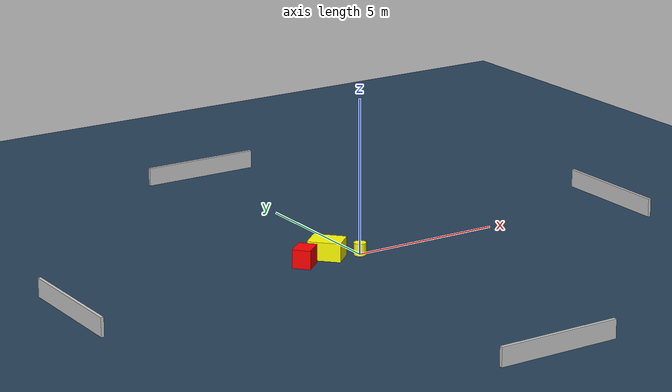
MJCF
<?xml version="1.0" ?>
<mujoco model="generated_environment">
  <option timestep="0.01" integrator="RK4" cone="elliptic"/>
  <default>
    <geom density="1"/>
  </default>
  <asset>
    <texture builtin="gradient" height="3072" name="skybox" rgb1="0.3 0.5 0.7" rgb2="0 0 0" type="skybox" width="512"/>
    <texture builtin="checker" height="300" name="groundplane" rgb1="0.2 0.3 0.4" rgb2="0.1 0.2 0.3" type="2d" width="300"/>
    <material name="groundplane" reflectance="0.2" texrepeat="5 5" texture="groundplane"/>
  </asset>
  <worldbody>
    <light dir="0 0 -1" directional="true" pos="0 0 1.5"/>
    <geom condim="3" friction="0.5 0.005 0.001" material="groundplane" name="floor" pos="0 0 0" size="0 0 0.05" type="plane"/>
    <body name="walls">
      <geom name="wall_1" condim="4" pos="-10.0 0.0 0.3" rgba="0.800000011920929 0.800000011920929 0.800000011920929 1.0" size="0.05 2.0 0.3" type="box"/>
      <geom name="wall_2" condim="4" pos="10.0 0.0 0.3" rgba="0.800000011920929 0.800000011920929 0.800000011920929 1.0" size="0.05 2.0 0.3" type="box"/>
      <geom name="wall_3" condim="4" pos="0.0 -10.0 0.3" rgba="0.800000011920929 0.800000011920929 0.800000011920929 1.0" size="2.0 0.05 0.3" type="box"/>
      <geom name="wall_4" condim="4" pos="0.0 10.0 0.3" rgba="0.800000011920929 0.800000011920929 0.800000011920929 1.0" size="2.0 0.05 0.3" type="box"/>
    </body>
    <body name="robot">
      <joint name="joint_x" type="slide" pos="0 0 0" axis="1 0 0"/>
      <joint name="joint_y" type="slide" pos="0 0 0" axis="0 1 0"/>
      <geom name="robot" type="cylinder" pos="0.0 0.0 0.2" size="0.2 0.2 0.0" mass="5.0" friction="1.0 0.005 0.0001" condim="4" rgba="1.0 1.0 0.0 1.0"/>
    </body>
    <body name="obstacle_1_movable">
      <geom name="obstacle_1_movable" condim="4" pos="-0.9951462490121256 0.3514844414466742 0.3" euler="0 0 42.800050096010715" friction="0.0 0.005 0.001" rgba="1.0 1.0 0.0 1.0" size="0.40161465169209687 0.532714574578807 0.3" type="box" mass="0.1"/>
      <joint type="free"/>
    </body>
    <body name="obstacle_2_static">
      <geom name="obstacle_2_static" condim="4" pos="-1.9859915213824173 0.07413706189350612 0.3" euler="0 0 311.3656482365812" friction="0.0 0.005 0.001" rgba="1.0 0.0 0.0 1.0" size="0.2917050542973834 0.35778781532617326 0.3" type="box"/>
    </body>
  </worldbody>
  <actuator>
    <motor name="actuator_x" joint="joint_x" gear="1" ctrlrange="-1 1"/>
    <motor name="actuator_y" joint="joint_y" gear="1" ctrlrange="-1 1"/>
  </actuator>
</mujoco>
